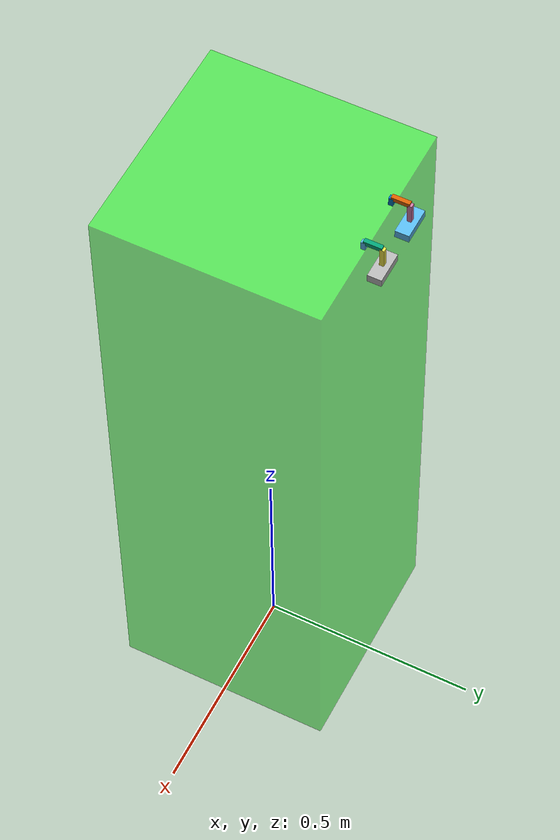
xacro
<?xml version="1.0"?>
<robot name="camerasupport" xmlns:xacro="http://www.ros.org/wiki/xacro">

    <xacro:include filename="$(find digiaqua_ros)/urdf/sensors_macro.urdf.xacro"/>

    <material name="green">
        <color rgba="0 1 0 0.5"/>
    </material>

    <material name="blue">
        <color rgba="0 0.8 0.8 0.5"/>
    </material>

    <link name="estante">
        <visual>
            <origin xyz="0 0 0.7925" rpy="0 0 0" />
            <geometry>
                <box size="0.5 0.5 1.585"/>
            </geometry>
            <material name="green"/>
        </visual>
    </link>
<!--                                           0.047 mm-->
    <link name="base_link">
        <visual>
            <geometry>
                <box size="0.01 0.01 0.02"/>
            </geometry>
        </visual>
    </link>

    <joint name="estante_to_base_link" type="fixed">
        <axis xyz="0 0 0"/>
        <limit effort="0.0" lower="0.0" upper="0.0" velocity="0.0"/>
        <origin rpy="0 0 0" xyz="0.06 0.2445 1.595"/>
        <parent link="estante"/>
        <child link="base_link"/>
    </joint>

    <link name="link1">
        <visual>
            <geometry>
                <box size="0.01 0.04 0.01"/>
            </geometry>
        </visual>
    </link>

    <joint name="base_link_to_link1" type="fixed">
        <axis xyz="0 0 0"/>
        <limit effort="0" lower="0" upper="0" velocity="0"/>
        <origin rpy="0 0 0" xyz="0 0.02 0.01"/>
        <parent link="base_link"/>
        <child link="link1"/>
    </joint>

    <link name="link2_camera_left">
        <visual>
            <geometry>
                <box size="0.01 0.01 0.047"/>
            </geometry>
        </visual>
    </link>

    <joint name="link1_to_link2" type="fixed">
        <axis xyz="0 0 0"/>
        <limit effort="0" lower="0" upper="0" velocity="0"/>
        <origin rpy="0 0 0" xyz="0 0.02 -0.0235"/>
        <parent link="link1"/>
        <child link="link2_camera_left"/>
    </joint>

    <link name="base_link_r">
        <visual>
            <geometry>
                <box size="0.01 0.01 0.02"/>
            </geometry>
        </visual>
    </link>

    <joint name="estante_to_base_link_r" type="fixed">
        <axis xyz="0 0 0"/>
        <limit effort="0.0" lower="0.0" upper="0.0" velocity="0.0"/>
        <origin rpy="0 0 0" xyz="-0.06 0.2445 1.595"/>
        <parent link="estante"/>
        <child link="base_link_r"/>
    </joint>

    <link name="link1_r">
        <visual>
            <geometry>
                <box size="0.01 0.04 0.01"/>
            </geometry>
        </visual>
    </link>

    <joint name="base_link_to_link1_r" type="fixed">
        <axis xyz="0 0 0"/>
        <limit effort="0" lower="0" upper="0" velocity="0"/>
        <origin rpy="0 0 0" xyz="0 0.02 0.01"/>
        <parent link="base_link_r"/>
        <child link="link1_r"/>
    </joint>

    <link name="link2_camera_right">
        <visual>
            <geometry>
                <box size="0.01 0.01 0.047"/>
            </geometry>
        </visual>
    </link>

    <joint name="link1_r_to_link2_r" type="fixed">
        <axis xyz="0 0 0"/>
        <limit effort="0" lower="0" upper="0" velocity="0"/>
        <origin rpy="0 0 0" xyz="0 0.02 -0.0235"/>
        <parent link="link1_r"/>
        <child link="link2_camera_right"/>
    </joint>

    <xacro:usb_cam name="camera_left" x="0" y="0" z="-0.035" roll="0" pitch="0" yaw="0"/>
    <xacro:usb_cam name="camera_right" x="0" y="0" z="-0.035" roll="0" pitch="0" yaw="0"/>

</robot>

<!--entre lentes: 110 mm-->
<!--lente ao eixo: 13 mm-->
<!--lente ao base link: 67 mm-->
<!--lente ao chao: 1.545 m-->

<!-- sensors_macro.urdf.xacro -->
<robot xmlns:xacro="http://www.ros.org/wiki/xacro">
    <xacro:macro name="kinect" params="name x y z roll pitch yaw">
        <joint name="${name}_joint" type="fixed">
            <origin xyz="${x} ${y} ${z}" rpy="${roll} ${pitch} ${yaw}"/>
            <parent link="base_link"/>
            <child link="${name}_link"/>
        </joint>

        <link name="${name}_link">
            <origin xyz="0 0 0" rpy="0 0 0"/>
            <visual>
                <origin xyz="0 0 0" rpy="0 0 1.57"/>
                <geometry>
                    <mesh filename="package://prometheus_description/meshes/kinect.dae"/>
                </geometry>
            </visual>
            <collision>
                <geometry>
                    <box size="0.06 0.30 0.07"/>
                </geometry>
            </collision>
        </link>

        <joint name="${name}_optical_joint" type="fixed">
            <origin xyz="0 0 0" rpy="0 0 0"/>
            <parent link="${name}_link"/>
            <child link="${name}_optical_frame"/>
        </joint>

        <link name="${name}_optical_frame"/>
    </xacro:macro>

    <xacro:macro name="usb_cam" params="name x y z roll pitch yaw">
        <joint name="${name}_joint" type="fixed">
            <origin xyz="${x} ${y} ${z}" rpy="${roll} ${pitch} ${yaw}"/>
            <parent link="link2_${name}"/>
            <child link="${name}_link"/>
        </joint>

        <link name="${name}_link">
            <visual>
                <geometry>
                    <box size="0.071 0.031 0.018"/>
                </geometry>
            </visual>
            <collision>
                <origin xyz="0 0 0" rpy="0 0 0"/>
                <geometry>
                    <box size="0.015 0.030 0.027"/>
                </geometry>
            </collision>
        </link>

        <joint name="${name}_rgb_optical_joint" type="fixed">
            <origin xyz="0 0 0" rpy="-2.8797 0 0"/>
            <parent link="${name}_link"/>
            <child link="${name}_rgb_optical_frame"/>
        </joint>
        <link name="${name}_rgb_optical_frame"/>

        <gazebo reference="${name}_rgb_optical_frame">
            <sensor type="camera" name="Usb Camera">
            <always_on>true</always_on>
            <visualize>false</visualize>
            <camera>
                <horizontal_fov>1.085595</horizontal_fov>
                <image>
                    <width>640</width>
                    <height>480</height>
                    <format>R8G8B8</format>
                </image>
                <clip>
                    <near>0.03</near>
                    <far>100</far>
                </clip>
            </camera>
            <plugin name="camera_controller" filename="libgazebo_ros_camera.so">
                <alwaysOn>true</alwaysOn>
                <updateRate>30.0</updateRate>
                <cameraName>${name}</cameraName>
                <frameName>${name}_rgb_optical_frame</frameName>
                <imageTopicName>image_raw</imageTopicName>
                <cameraInfoTopicName>camera_info</cameraInfoTopicName>
                <hackBaseline>0.07</hackBaseline>
                <distortionK1>0.0</distortionK1>
                <distortionK2>0.0</distortionK2>
                <distortionK3>0.0</distortionK3>
                <distortionT1>0.0</distortionT1>
                <distortionT2>0.0</distortionT2>
            </plugin>
            </sensor>
        </gazebo>

    </xacro:macro>

</robot>
